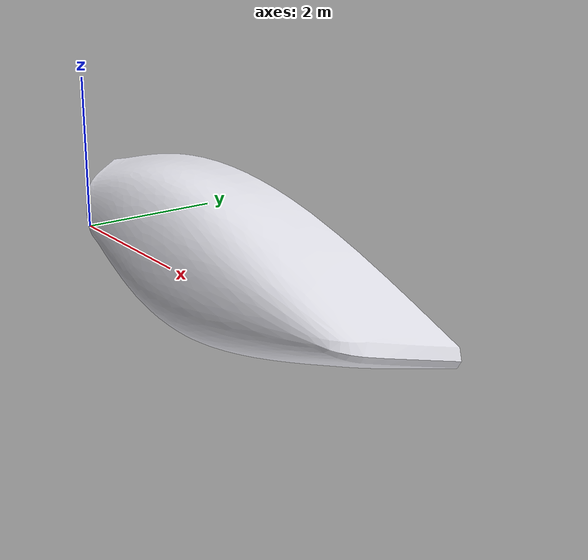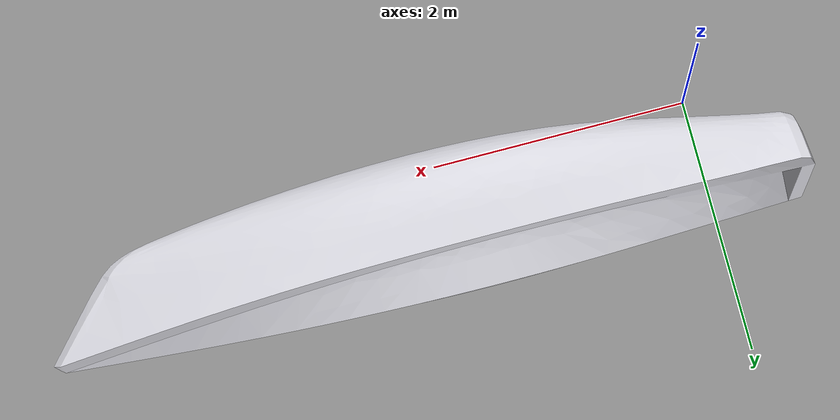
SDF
<?xml version="1.0" ?>
<sdf version="1.6">
  <world name="world">
    <model name="toy_boat_hullonly_full">
      <pose>0 0 0 0 0 0</pose>

      <!-- ===================== HULL (base link) ====================== -->
      <link name="base_link">
        <pose>0 0 0 0 0 0</pose>
        <inertial>
          <pose>2.2206 0.3664 0 0 0 0</pose>
          <mass>1400.0</mass>
          <inertia>
            <ixx>677.0</ixx>  <ixy>0</ixy> <ixz>0</ixz>
            <iyy>4772.0</iyy> <iyz>0</iyz>
            <izz>4305.0</izz>
          </inertia>
        </inertial>
        <collision name="hull_collision">
          <pose>0 0 0 0 0 0</pose>
          <geometry><mesh><uri>../sdfs/DSYHS/OBJ/hull.obj</uri><scale>0.0026970 0.0026970 0.0026970</scale></mesh></geometry>
        </collision>
        <visual name="hull_visual">
          <pose>0 0 0 0 0 0</pose>
          <geometry><mesh><uri>../sdfs/DSYHS/OBJ/hull.obj</uri><scale>0.0026970 0.0026970 0.0026970</scale></mesh></geometry>
          <material><ambient>0.85 0.85 0.88 1</ambient><diffuse>0.85 0.85 0.88 1</diffuse></material>
        </visual>
      </link>

    </model>
  </world>
</sdf>
